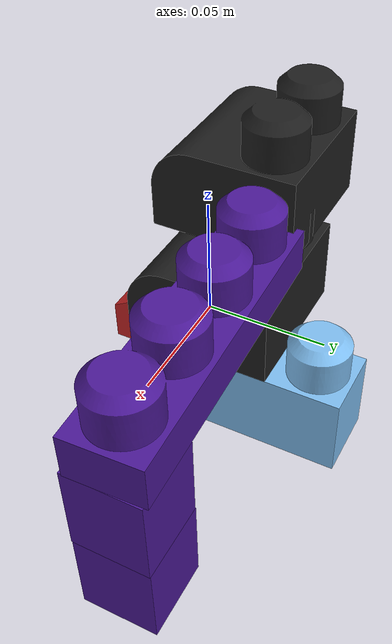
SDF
<?xml version='1.0'?>
<sdf version='1.7'>
  <model name='costruzione-1'>
    <model name='X1-Y1-Z2'>
      <static>0</static>
      <link name='link'>
        <pose>0 0 0 0 -0 0</pose>
        <inertial>
          <pose>0 0 -0.00064 0 -0 0</pose>
          <mass>7.975e-06</mass>
          <inertia>
            <ixx>3.1065e-09</ixx>
            <ixy>2.7e-15</ixy>
            <ixz>-2.403e-13</ixz>
            <iyy>3.1066e-09</iyy>
            <iyz>-2.21e-14</iyz>
            <izz>1.97979e-09</izz>
          </inertia>
        </inertial>
        <visual name='visual'>
          <geometry>
            <mesh>
              <uri>model://X1-Y1-Z2/meshes/X1-Y1-Z2.stl</uri>
            </mesh>
          </geometry>
          <material>
            <script>
              <uri>file://media/materials/scripts/gazebo.material</uri>
              <name>Gazebo/Indigo</name>
            </script>
          </material>
        </visual>
        <collision name='collision'>
          <geometry>
            <mesh>
              <uri>model://X1-Y1-Z2/meshes/X1-Y1-Z2.stl</uri>
            </mesh>
          </geometry>
          <max_contacts>10</max_contacts>
          <surface>
            <contact>
              <ode/>
            </contact>
            <bounce/>
            <friction>
              <torsional>
                <ode/>
              </torsional>
              <ode/>
            </friction>
          </surface>
        </collision>
        <self_collide>0</self_collide>
        <enable_wind>0</enable_wind>
        <kinematic>0</kinematic>
      </link>
      <pose>-0.062873 -0.018457 -0.028843 0 -0 0</pose>
    </model>
    <model name='X1-Y1-Z2_0'>
      <static>0</static>
      <link name='link'>
        <pose>0 0 0 0 -0 0</pose>
        <inertial>
          <pose>0 0 -0.00064 0 -0 0</pose>
          <mass>7.975e-06</mass>
          <inertia>
            <ixx>3.1065e-09</ixx>
            <ixy>2.7e-15</ixy>
            <ixz>-2.403e-13</ixz>
            <iyy>3.1066e-09</iyy>
            <iyz>-2.21e-14</iyz>
            <izz>1.97979e-09</izz>
          </inertia>
        </inertial>
        <visual name='visual'>
          <geometry>
            <mesh>
              <uri>model://X1-Y1-Z2/meshes/X1-Y1-Z2.stl</uri>
            </mesh>
          </geometry>
          <material>
            <script>
              <uri>file://media/materials/scripts/gazebo.material</uri>
              <name>Gazebo/Indigo</name>
            </script>
          </material>
        </visual>
        <collision name='collision'>
          <geometry>
            <mesh>
              <uri>model://X1-Y1-Z2/meshes/X1-Y1-Z2.stl</uri>
            </mesh>
          </geometry>
          <max_contacts>10</max_contacts>
          <surface>
            <contact>
              <ode/>
            </contact>
            <bounce/>
            <friction>
              <torsional>
                <ode/>
              </torsional>
              <ode/>
            </friction>
          </surface>
        </collision>
        <self_collide>0</self_collide>
        <enable_wind>0</enable_wind>
        <kinematic>0</kinematic>
      </link>
      <pose>-0.063089 -0.019067 0.010887 0 -0 0</pose>
    </model>
    <model name='X1-Y1-Z2_1'>
      <static>0</static>
      <link name='link'>
        <pose>0 0 0 0 -0 0</pose>
        <inertial>
          <pose>0 0 -0.00064 0 -0 0</pose>
          <mass>7.975e-06</mass>
          <inertia>
            <ixx>3.1065e-09</ixx>
            <ixy>2.7e-15</ixy>
            <ixz>-2.403e-13</ixz>
            <iyy>3.1066e-09</iyy>
            <iyz>-2.21e-14</iyz>
            <izz>1.97979e-09</izz>
          </inertia>
        </inertial>
        <visual name='visual'>
          <geometry>
            <mesh>
              <uri>model://X1-Y1-Z2/meshes/X1-Y1-Z2.stl</uri>
            </mesh>
          </geometry>
          <material>
            <script>
              <uri>file://media/materials/scripts/gazebo.material</uri>
              <name>Gazebo/Indigo</name>
            </script>
          </material>
        </visual>
        <collision name='collision'>
          <geometry>
            <mesh>
              <uri>model://X1-Y1-Z2/meshes/X1-Y1-Z2.stl</uri>
            </mesh>
          </geometry>
          <max_contacts>10</max_contacts>
          <surface>
            <contact>
              <ode/>
            </contact>
            <bounce/>
            <friction>
              <torsional>
                <ode/>
              </torsional>
              <ode/>
            </friction>
          </surface>
        </collision>
        <self_collide>0</self_collide>
        <enable_wind>0</enable_wind>
        <kinematic>0</kinematic>
      </link>
      <pose>0.093033 0.019198 0.008715 0 -0 0</pose>
    </model>
    <model name='X1-Y1-Z2_2'>
      <static>0</static>
      <link name='link'>
        <pose>0 0 0 0 -0 0</pose>
        <inertial>
          <pose>0 0 -0.00064 0 -0 0</pose>
          <mass>7.975e-06</mass>
          <inertia>
            <ixx>3.1065e-09</ixx>
            <ixy>2.7e-15</ixy>
            <ixz>-2.403e-13</ixz>
            <iyy>3.1066e-09</iyy>
            <iyz>-2.21e-14</iyz>
            <izz>1.97979e-09</izz>
          </inertia>
        </inertial>
        <visual name='visual'>
          <geometry>
            <mesh>
              <uri>model://X1-Y1-Z2/meshes/X1-Y1-Z2.stl</uri>
            </mesh>
          </geometry>
          <material>
            <script>
              <uri>file://media/materials/scripts/gazebo.material</uri>
              <name>Gazebo/Indigo</name>
            </script>
          </material>
        </visual>
        <collision name='collision'>
          <geometry>
            <mesh>
              <uri>model://X1-Y1-Z2/meshes/X1-Y1-Z2.stl</uri>
            </mesh>
          </geometry>
          <max_contacts>10</max_contacts>
          <surface>
            <contact>
              <ode/>
            </contact>
            <bounce/>
            <friction>
              <torsional>
                <ode/>
              </torsional>
              <ode/>
            </friction>
          </surface>
        </collision>
        <self_collide>0</self_collide>
        <enable_wind>0</enable_wind>
        <kinematic>0</kinematic>
      </link>
      <pose>0.09278 0.019284 -0.028843 0 -0 0</pose>
    </model>
    <model name='X1-Y2-Z2-CHAMFER'>
      <static>0</static>
      <link name='link'>
        <pose>0 0 0 0 -0 0</pose>
        <inertial>
          <pose>0 0.004888 -0.00392 0 -0 0</pose>
          <mass>1.18134e-05</mass>
          <inertia>
            <ixx>7.114e-09</ixx>
            <ixy>-5.32e-14</ixy>
            <ixz>-1.824e-13</ixz>
            <iyy>4.36e-09</iyy>
            <iyz>-1.078e-09</iyz>
            <izz>5.925e-09</izz>
          </inertia>
        </inertial>
        <visual name='visual'>
          <geometry>
            <mesh>
              <uri>model://X1-Y2-Z2-CHAMFER/meshes/X1-Y2-Z2-CHAMFER.stl</uri>
            </mesh>
          </geometry>
          <material>
            <script>
              <uri>file://media/materials/scripts/gazebo.material</uri>
              <name>Gazebo/Red</name>
            </script>
          </material>
        </visual>
        <collision name='collision'>
          <geometry>
            <mesh>
              <uri>model://X1-Y2-Z2-CHAMFER/meshes/X1-Y2-Z2-CHAMFER.stl</uri>
            </mesh>
          </geometry>
          <max_contacts>10</max_contacts>
          <surface>
            <contact>
              <ode/>
            </contact>
            <bounce/>
            <friction>
              <torsional>
                <ode/>
              </torsional>
              <ode/>
            </friction>
          </surface>
        </collision>
        <self_collide>0</self_collide>
        <enable_wind>0</enable_wind>
        <kinematic>0</kinematic>
      </link>
      <pose>-0.034095 -0.030629 -0.028843 0 -0 0</pose>
    </model>
    <model name='X1-Y3-Z2'>
      <static>0</static>
      <link name='link'>
        <pose>0 0 0 0 -0 0</pose>
        <inertial>
          <pose>0 0 0.000633 0 -0 0</pose>
          <mass>2.12622e-05</mass>
          <inertia>
            <ixx>2.43707e-08</ixx>
            <ixy>-4.3e-14</ixy>
            <ixz>-2.7e-14</ixz>
            <iyy>8.5755e-09</iyy>
            <iyz>1.8e-14</iyz>
            <izz>2.14272e-08</izz>
          </inertia>
        </inertial>
        <visual name='visual'>
          <geometry>
            <mesh>
              <uri>model://X1-Y3-Z2/meshes/X1-Y3-Z2.stl</uri>
            </mesh>
          </geometry>
          <material>
            <script>
              <uri>file://media/materials/scripts/gazebo.material</uri>
              <name>Gazebo/SkyBlue</name>
            </script>
          </material>
        </visual>
        <collision name='collision'>
          <geometry>
            <mesh>
              <uri>model://X1-Y3-Z2/meshes/X1-Y3-Z2.stl</uri>
            </mesh>
          </geometry>
          <max_contacts>10</max_contacts>
          <surface>
            <contact>
              <ode/>
            </contact>
            <bounce/>
            <friction>
              <torsional>
                <ode/>
              </torsional>
              <ode/>
            </friction>
          </surface>
        </collision>
        <self_collide>0</self_collide>
        <enable_wind>0</enable_wind>
        <kinematic>0</kinematic>
      </link>
      <pose>-0.004449 0.015163 -0.028843 0 -0 0</pose>
    </model>
    <model name='X1-Y4-Z1'>
      <static>0</static>
      <link name='link'>
        <pose>0 0 0 0 -0 0</pose>
        <inertial>
          <pose>0 -0.00013 0.00028 0 -0 0</pose>
          <mass>1.929e-05</mass>
          <inertia>
            <ixx>3.041e-08</ixx>
            <ixy>1e-14</ixy>
            <ixz>4e-14</ixz>
            <iyy>4.592e-09</iyy>
            <iyz>-2.67e-11</iyz>
            <izz>3.0317e-08</izz>
          </inertia>
        </inertial>
        <visual name='visual'>
          <geometry>
            <mesh>
              <uri>model://X1-Y4-Z1/meshes/X1-Y4-Z1.stl</uri>
            </mesh>
          </geometry>
          <material>
            <script>
              <uri>file://media/materials/scripts/gazebo.material</uri>
              <name>Gazebo/Indigo</name>
            </script>
          </material>
        </visual>
        <collision name='collision'>
          <geometry>
            <mesh>
              <uri>model://X1-Y4-Z1/meshes/X1-Y4-Z1.stl</uri>
            </mesh>
          </geometry>
          <max_contacts>10</max_contacts>
          <surface>
            <contact>
              <ode/>
            </contact>
            <bounce/>
            <friction>
              <torsional>
                <ode/>
              </torsional>
              <ode/>
            </friction>
          </surface>
        </collision>
        <self_collide>0</self_collide>
        <enable_wind>0</enable_wind>
        <kinematic>0</kinematic>
      </link>
      <pose>0.044928 0.018417 0.0368 0 0 -1.53118</pose>
    </model>
    <model name='X2-Y2-Z2-FILLET'>
      <static>0</static>
      <link name='link'>
        <pose>0 0 0 0 -0 0</pose>
        <inertial>
          <pose>3.8e-05 0.0035 -0.0021 0 -0 0</pose>
          <mass>2.2336e-05</mass>
          <inertia>
            <ixx>1.43854e-08</ixx>
            <ixy>-1.0468e-11</ixy>
            <ixz>-2.1942e-11</ixz>
            <iyy>1.5135e-08</iyy>
            <iyz>-1.6187e-09</iyz>
            <izz>1.896e-08</izz>
          </inertia>
        </inertial>
        <visual name='visual'>
          <geometry>
            <mesh>
              <uri>model://X2-Y2-Z2-FILLET/meshes/X2-Y2-Z2-FILLET.stl</uri>
            </mesh>
          </geometry>
          <material>
            <script>
              <uri>file://media/materials/scripts/gazebo.material</uri>
              <name>Gazebo/FlatBlack</name>
            </script>
          </material>
        </visual>
        <collision name='collision'>
          <geometry>
            <mesh>
              <uri>model://X2-Y2-Z2-FILLET/meshes/X2-Y2-Z2-FILLET.stl</uri>
            </mesh>
          </geometry>
          <max_contacts>10</max_contacts>
          <surface>
            <contact>
              <ode/>
            </contact>
            <bounce/>
            <friction>
              <torsional>
                <ode/>
              </torsional>
              <ode/>
            </friction>
          </surface>
        </collision>
        <self_collide>0</self_collide>
        <enable_wind>0</enable_wind>
        <kinematic>0</kinematic>
      </link>
      <pose>-0.019185 -0.000737 0.009914 0 -0 0</pose>
    </model>
    <model name='X2-Y2-Z2-FILLET_0'>
      <static>0</static>
      <link name='link'>
        <pose>0 0 0 0 -0 0</pose>
        <inertial>
          <pose>3.8e-05 0.0035 -0.0021 0 -0 0</pose>
          <mass>2.2336e-05</mass>
          <inertia>
            <ixx>1.43854e-08</ixx>
            <ixy>-1.0468e-11</ixy>
            <ixz>-2.1942e-11</ixz>
            <iyy>1.5135e-08</iyy>
            <iyz>-1.6187e-09</iyz>
            <izz>1.896e-08</izz>
          </inertia>
        </inertial>
        <visual name='visual'>
          <geometry>
            <mesh>
              <uri>model://X2-Y2-Z2-FILLET/meshes/X2-Y2-Z2-FILLET.stl</uri>
            </mesh>
          </geometry>
          <material>
            <script>
              <uri>file://media/materials/scripts/gazebo.material</uri>
              <name>Gazebo/FlatBlack</name>
            </script>
          </material>
        </visual>
        <collision name='collision'>
          <geometry>
            <mesh>
              <uri>model://X2-Y2-Z2-FILLET/meshes/X2-Y2-Z2-FILLET.stl</uri>
            </mesh>
          </geometry>
          <max_contacts>10</max_contacts>
          <surface>
            <contact>
              <ode/>
            </contact>
            <bounce/>
            <friction>
              <torsional>
                <ode/>
              </torsional>
              <ode/>
            </friction>
          </surface>
        </collision>
        <self_collide>0</self_collide>
        <enable_wind>0</enable_wind>
        <kinematic>0</kinematic>
      </link>
      <pose>-0.047051 -0.003172 0.049053 0 -0 0</pose>
    </model>
    <joint name='link_JOINT_0' type='fixed'>
      <parent>X1-Y1-Z2_0::link</parent>
      <child>X2-Y2-Z2-FILLET_0::link</child>
      <pose>0 0 0 0 -0 0</pose>
      <physics>
        <ode>
          <limit>
            <cfm>0</cfm>
            <erp>0.2</erp>
          </limit>
          <suspension>
            <cfm>0</cfm>
            <erp>0.2</erp>
          </suspension>
        </ode>
      </physics>
    </joint>
    <joint name='link_JOINT_2' type='fixed'>
      <parent>X1-Y1-Z2::link</parent>
      <child>X1-Y1-Z2_0::link</child>
      <pose>0 0 0 0 -0 0</pose>
      <physics>
        <ode>
          <limit>
            <cfm>0</cfm>
            <erp>0.2</erp>
          </limit>
          <suspension>
            <cfm>0</cfm>
            <erp>0.2</erp>
          </suspension>
        </ode>
      </physics>
    </joint>
    <joint name='link_JOINT_5' type='fixed'>
      <parent>X1-Y1-Z2_1::link</parent>
      <child>X1-Y1-Z2_2::link</child>
      <pose>0 0 0 0 -0 0</pose>
      <physics>
        <ode>
          <limit>
            <cfm>0</cfm>
            <erp>0.2</erp>
          </limit>
          <suspension>
            <cfm>0</cfm>
            <erp>0.2</erp>
          </suspension>
        </ode>
      </physics>
    </joint>
    <joint name='link_JOINT_6' type='fixed'>
      <parent>X1-Y1-Z2_1::link</parent>
      <child>X1-Y4-Z1::link</child>
      <pose>0 0 0 0 -0 0</pose>
      <physics>
        <ode>
          <limit>
            <cfm>0</cfm>
            <erp>0.2</erp>
          </limit>
          <suspension>
            <cfm>0</cfm>
            <erp>0.2</erp>
          </suspension>
        </ode>
      </physics>
    </joint>
    <joint name='link_JOINT_3' type='fixed'>
      <parent>X1-Y2-Z2-CHAMFER::link</parent>
      <child>X2-Y2-Z2-FILLET::link</child>
      <pose>0 0 0 0 -0 0</pose>
      <physics>
        <ode>
          <limit>
            <cfm>0</cfm>
            <erp>0.2</erp>
          </limit>
          <suspension>
            <cfm>0</cfm>
            <erp>0.2</erp>
          </suspension>
        </ode>
      </physics>
    </joint>
    <joint name='link_JOINT_4' type='fixed'>
      <parent>X1-Y3-Z2::link</parent>
      <child>X2-Y2-Z2-FILLET::link</child>
      <pose>0 0 0 0 -0 0</pose>
      <physics>
        <ode>
          <limit>
            <cfm>0</cfm>
            <erp>0.2</erp>
          </limit>
          <suspension>
            <cfm>0</cfm>
            <erp>0.2</erp>
          </suspension>
        </ode>
      </physics>
    </joint>
    <joint name='link_JOINT_1' type='fixed'>
      <parent>X2-Y2-Z2-FILLET::link</parent>
      <child>X2-Y2-Z2-FILLET_0::link</child>
      <pose>0 0 0 0 -0 0</pose>
      <physics>
        <ode>
          <limit>
            <cfm>0</cfm>
            <erp>0.2</erp>
          </limit>
          <suspension>
            <cfm>0</cfm>
            <erp>0.2</erp>
          </suspension>
        </ode>
      </physics>
    </joint>
    <joint name='link_JOINT_7' type='fixed'>
      <parent>X2-Y2-Z2-FILLET::link</parent>
      <child>X1-Y4-Z1::link</child>
      <pose>0 0 0 0 -0 0</pose>
      <physics>
        <ode>
          <limit>
            <cfm>0</cfm>
            <erp>0.2</erp>
          </limit>
          <suspension>
            <cfm>0</cfm>
            <erp>0.2</erp>
          </suspension>
        </ode>
      </physics>
    </joint>
    <static>0</static>
    <allow_auto_disable>1</allow_auto_disable>
  </model>
</sdf>
